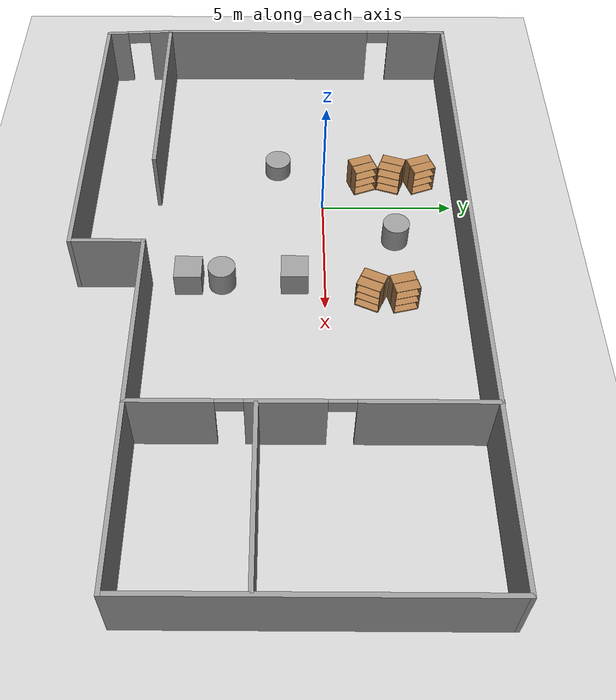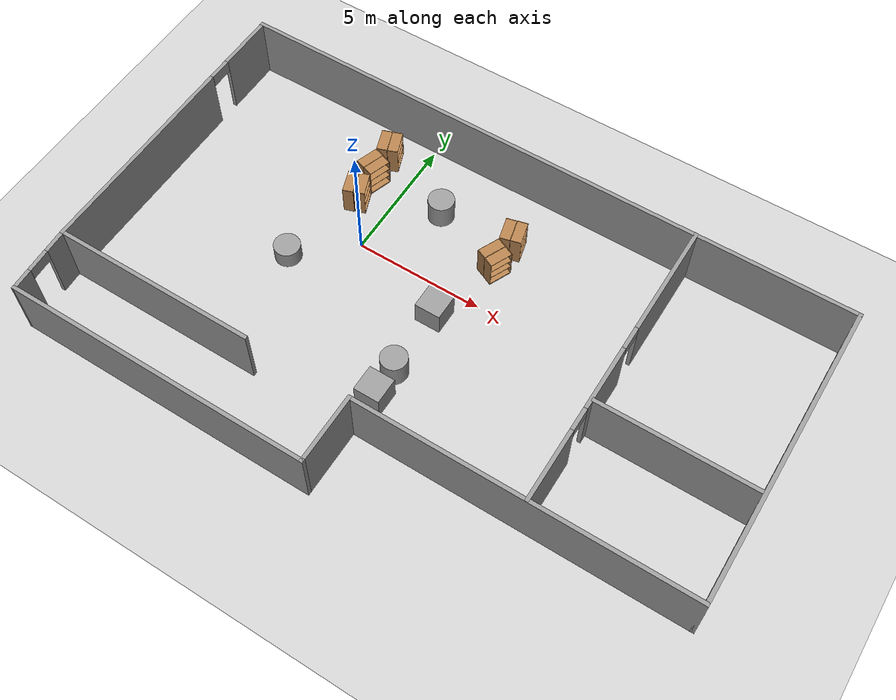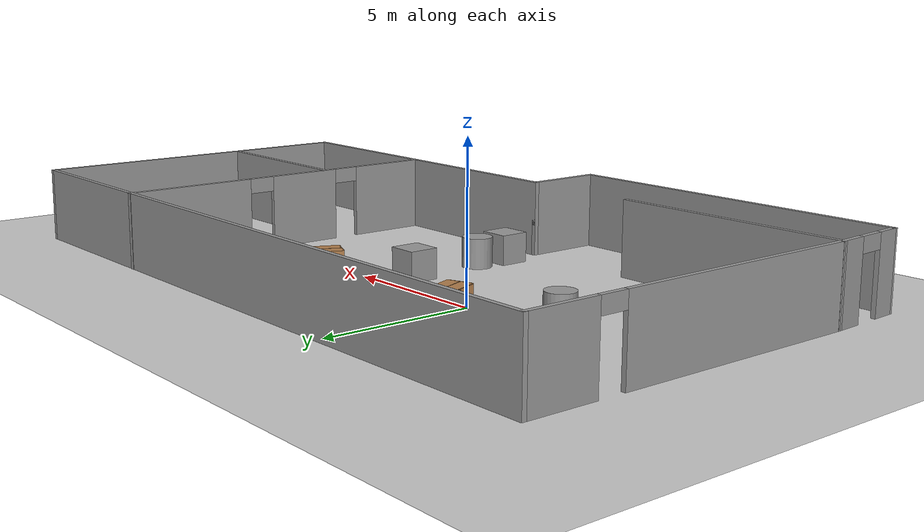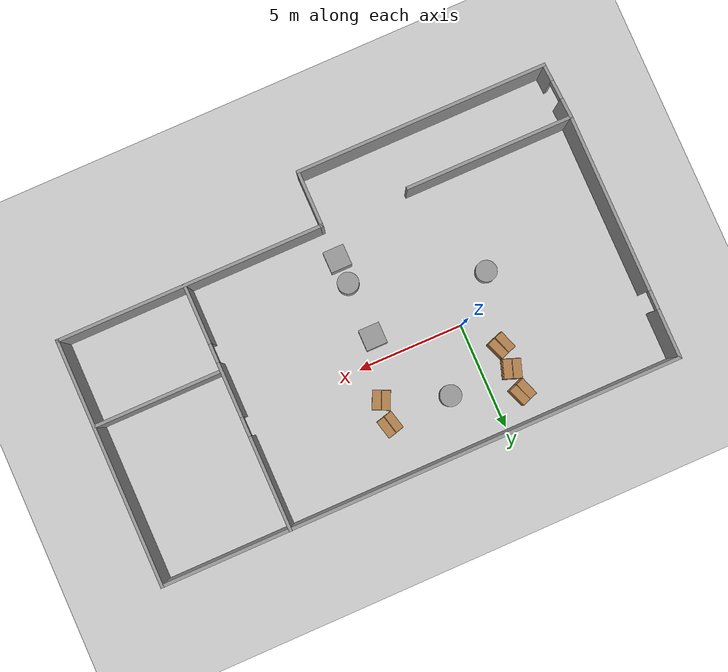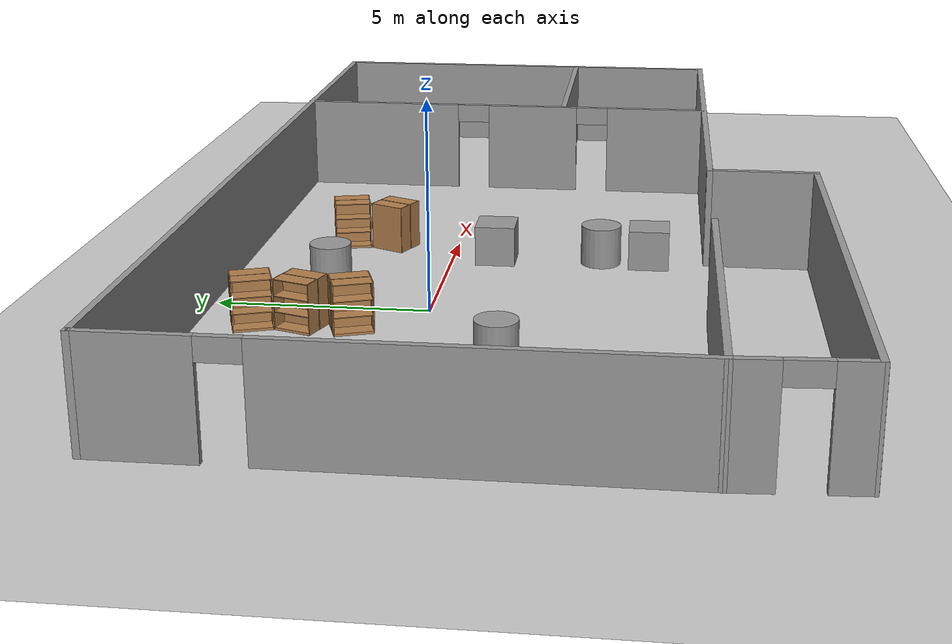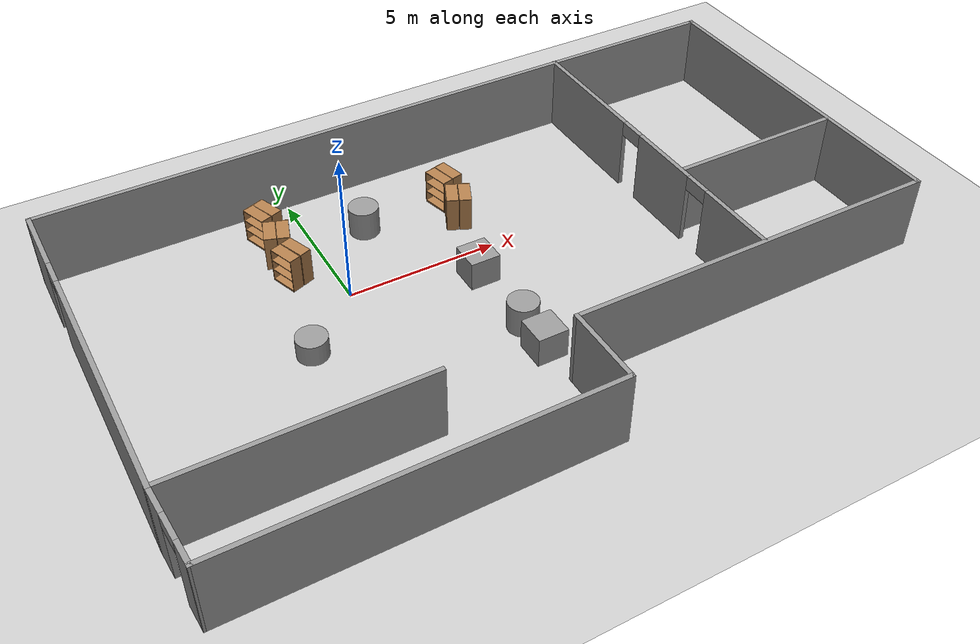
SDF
<sdf version="1.7">
 <world name="default">
  <model name="book_shelf1">
   <model name="bookshelf">
    <static>1</static>
    <link name="link">
     <inertial><mass>1</mass></inertial>
     <collision name="back">
      <pose>0 0.005 0.6 0 -0 0</pose>
      <geometry><box><size>0.9 0.01 1.2</size></box></geometry>
     </collision>
     <visual name="visual1">
      <pose>0 0.005 0.6 0 -0 0</pose>
      <geometry><box><size>0.9 0.01 1.2</size></box></geometry>
      <material>
       <script><uri>file://media/materials/scripts/gazebo.material</uri><name>Gazebo/Wood</name></script>
      </material>
     </visual>
     <collision name="left_side">
      <pose>0.45 -0.195 0.6 0 -0 0</pose>
      <geometry><box><size>0.02 0.4 1.2</size></box></geometry>
     </collision>
     <visual name="visual2">
      <pose>0.45 -0.195 0.6 0 -0 0</pose>
      <geometry><box><size>0.02 0.4 1.2</size></box></geometry>
      <material>
       <script><uri>file://media/materials/scripts/gazebo.material</uri><name>Gazebo/Wood</name></script>
      </material>
     </visual>
     <collision name="right_side">
      <pose>-0.45 -0.195 0.6 0 -0 0</pose>
      <geometry><box><size>0.02 0.4 1.2</size></box></geometry>
     </collision>
     <visual name="visual3">
      <pose>-0.45 -0.195 0.6 0 -0 0</pose>
      <geometry><box><size>0.02 0.4 1.2</size></box></geometry>
      <material>
       <script><uri>file://media/materials/scripts/gazebo.material</uri><name>Gazebo/Wood</name></script>
      </material>
     </visual>
     <collision name="bottom">
      <pose>0 -0.195 0.03 0 -0 0</pose>
      <geometry><box><size>0.88 0.4 0.06</size></box></geometry>
     </collision>
     <visual name="visual4">
      <pose>0 -0.195 0.03 0 -0 0</pose>
      <geometry><box><size>0.88 0.4 0.06</size></box></geometry>
      <material>
       <script><uri>file://media/materials/scripts/gazebo.material</uri><name>Gazebo/Wood</name></script>
      </material>
     </visual>
     <collision name="top">
      <pose>0 -0.195 1.19 0 -0 0</pose>
      <geometry><box><size>0.88 0.4 0.02</size></box></geometry>
     </collision>
     <visual name="visual5">
      <pose>0 -0.195 1.19 0 -0 0</pose>
      <geometry><box><size>0.88 0.4 0.02</size></box></geometry>
      <material>
       <script><uri>file://media/materials/scripts/gazebo.material</uri><name>Gazebo/Wood</name></script>
      </material>
     </visual>
     <collision name="low_shelf">
      <pose>0 -0.195 0.43 0 -0 0</pose>
      <geometry><box><size>0.88 0.4 0.02</size></box></geometry>
     </collision>
     <visual name="visual6">
      <pose>0 -0.195 0.43 0 -0 0</pose>
      <geometry><box><size>0.88 0.4 0.02</size></box></geometry>
      <material>
       <script><uri>file://media/materials/scripts/gazebo.material</uri><name>Gazebo/Wood</name></script>
      </material>
     </visual>
     <collision name="high_shelf">
      <pose>0 -0.195 0.8 0 -0 0</pose>
      <geometry><box><size>0.88 0.4 0.02</size></box></geometry>
     </collision>
     <visual name="visual7">
      <pose>0 -0.195 0.8 0 -0 0</pose>
      <geometry><box><size>0.88 0.4 0.02</size></box></geometry>
      <material>
       <script><uri>file://media/materials/scripts/gazebo.material</uri><name>Gazebo/Wood</name></script>
      </material>
     </visual>
    </link>
    <pose>-0.023837 1.13591 0 0 0 -1.23356</pose>
   </model>
   <model name="bookshelf_clone_0">
    <static>1</static>
    <link name="link">
     <inertial><mass>1</mass></inertial>
     <collision name="back">
      <pose>0 0.005 0.6 0 -0 0</pose>
      <geometry><box><size>0.9 0.01 1.2</size></box></geometry>
     </collision>
     <visual name="visual1">
      <pose>0 0.005 0.6 0 -0 0</pose>
      <geometry><box><size>0.9 0.01 1.2</size></box></geometry>
      <material>
       <script><uri>file://media/materials/scripts/gazebo.material</uri><name>Gazebo/Wood</name></script>
      </material>
     </visual>
     <collision name="left_side">
      <pose>0.45 -0.195 0.6 0 -0 0</pose>
      <geometry><box><size>0.02 0.4 1.2</size></box></geometry>
     </collision>
     <visual name="visual2">
      <pose>0.45 -0.195 0.6 0 -0 0</pose>
      <geometry><box><size>0.02 0.4 1.2</size></box></geometry>
      <material>
       <script><uri>file://media/materials/scripts/gazebo.material</uri><name>Gazebo/Wood</name></script>
      </material>
     </visual>
     <collision name="right_side">
      <pose>-0.45 -0.195 0.6 0 -0 0</pose>
      <geometry><box><size>0.02 0.4 1.2</size></box></geometry>
     </collision>
     <visual name="visual3">
      <pose>-0.45 -0.195 0.6 0 -0 0</pose>
      <geometry><box><size>0.02 0.4 1.2</size></box></geometry>
      <material>
       <script><uri>file://media/materials/scripts/gazebo.material</uri><name>Gazebo/Wood</name></script>
      </material>
     </visual>
     <collision name="bottom">
      <pose>0 -0.195 0.03 0 -0 0</pose>
      <geometry><box><size>0.88 0.4 0.06</size></box></geometry>
     </collision>
     <visual name="visual4">
      <pose>0 -0.195 0.03 0 -0 0</pose>
      <geometry><box><size>0.88 0.4 0.06</size></box></geometry>
      <material>
       <script><uri>file://media/materials/scripts/gazebo.material</uri><name>Gazebo/Wood</name></script>
      </material>
     </visual>
     <collision name="top">
      <pose>0 -0.195 1.19 0 -0 0</pose>
      <geometry><box><size>0.88 0.4 0.02</size></box></geometry>
     </collision>
     <visual name="visual5">
      <pose>0 -0.195 1.19 0 -0 0</pose>
      <geometry><box><size>0.88 0.4 0.02</size></box></geometry>
      <material>
       <script><uri>file://media/materials/scripts/gazebo.material</uri><name>Gazebo/Wood</name></script>
      </material>
     </visual>
     <collision name="low_shelf">
      <pose>0 -0.195 0.43 0 -0 0</pose>
      <geometry><box><size>0.88 0.4 0.02</size></box></geometry>
     </collision>
     <visual name="visual6">
      <pose>0 -0.195 0.43 0 -0 0</pose>
      <geometry><box><size>0.88 0.4 0.02</size></box></geometry>
      <material>
       <script><uri>file://media/materials/scripts/gazebo.material</uri><name>Gazebo/Wood</name></script>
      </material>
     </visual>
     <collision name="high_shelf">
      <pose>0 -0.195 0.8 0 -0 0</pose>
      <geometry><box><size>0.88 0.4 0.02</size></box></geometry>
     </collision>
     <visual name="visual7">
      <pose>0 -0.195 0.8 0 -0 0</pose>
      <geometry><box><size>0.88 0.4 0.02</size></box></geometry>
      <material>
       <script><uri>file://media/materials/scripts/gazebo.material</uri><name>Gazebo/Wood</name></script>
      </material>
     </visual>
    </link>
    <pose>-0.000319 -1.14488 0 0 0 -1.23356</pose>
   </model>
   <model name="bookshelf_clone_1">
    <static>1</static>
    <link name="link">
     <inertial><mass>1</mass></inertial>
     <collision name="back">
      <pose>0 0.005 0.6 0 -0 0</pose>
      <geometry><box><size>0.9 0.01 1.2</size></box></geometry>
     </collision>
     <visual name="visual1">
      <pose>0 0.005 0.6 0 -0 0</pose>
      <geometry><box><size>0.9 0.01 1.2</size></box></geometry>
      <material>
       <script><uri>file://media/materials/scripts/gazebo.material</uri><name>Gazebo/Wood</name></script>
      </material>
     </visual>
     <collision name="left_side">
      <pose>0.45 -0.195 0.6 0 -0 0</pose>
      <geometry><box><size>0.02 0.4 1.2</size></box></geometry>
     </collision>
     <visual name="visual2">
      <pose>0.45 -0.195 0.6 0 -0 0</pose>
      <geometry><box><size>0.02 0.4 1.2</size></box></geometry>
      <material>
       <script><uri>file://media/materials/scripts/gazebo.material</uri><name>Gazebo/Wood</name></script>
      </material>
     </visual>
     <collision name="right_side">
      <pose>-0.45 -0.195 0.6 0 -0 0</pose>
      <geometry><box><size>0.02 0.4 1.2</size></box></geometry>
     </collision>
     <visual name="visual3">
      <pose>-0.45 -0.195 0.6 0 -0 0</pose>
      <geometry><box><size>0.02 0.4 1.2</size></box></geometry>
      <material>
       <script><uri>file://media/materials/scripts/gazebo.material</uri><name>Gazebo/Wood</name></script>
      </material>
     </visual>
     <collision name="bottom">
      <pose>0 -0.195 0.03 0 -0 0</pose>
      <geometry><box><size>0.88 0.4 0.06</size></box></geometry>
     </collision>
     <visual name="visual4">
      <pose>0 -0.195 0.03 0 -0 0</pose>
      <geometry><box><size>0.88 0.4 0.06</size></box></geometry>
      <material>
       <script><uri>file://media/materials/scripts/gazebo.material</uri><name>Gazebo/Wood</name></script>
      </material>
     </visual>
     <collision name="top">
      <pose>0 -0.195 1.19 0 -0 0</pose>
      <geometry><box><size>0.88 0.4 0.02</size></box></geometry>
     </collision>
     <visual name="visual5">
      <pose>0 -0.195 1.19 0 -0 0</pose>
      <geometry><box><size>0.88 0.4 0.02</size></box></geometry>
      <material>
       <script><uri>file://media/materials/scripts/gazebo.material</uri><name>Gazebo/Wood</name></script>
      </material>
     </visual>
     <collision name="low_shelf">
      <pose>0 -0.195 0.43 0 -0 0</pose>
      <geometry><box><size>0.88 0.4 0.02</size></box></geometry>
     </collision>
     <visual name="visual6">
      <pose>0 -0.195 0.43 0 -0 0</pose>
      <geometry><box><size>0.88 0.4 0.02</size></box></geometry>
      <material>
       <script><uri>file://media/materials/scripts/gazebo.material</uri><name>Gazebo/Wood</name></script>
      </material>
     </visual>
     <collision name="high_shelf">
      <pose>0 -0.195 0.8 0 -0 0</pose>
      <geometry><box><size>0.88 0.4 0.02</size></box></geometry>
     </collision>
     <visual name="visual7">
      <pose>0 -0.195 0.8 0 -0 0</pose>
      <geometry><box><size>0.88 0.4 0.02</size></box></geometry>
      <material>
       <script><uri>file://media/materials/scripts/gazebo.material</uri><name>Gazebo/Wood</name></script>
      </material>
     </visual>
    </link>
    <pose>-0.009967 0.010715 0 0 0 -1.8925</pose>
   </model>
   <model name="bookshelf_clone_2">
    <static>1</static>
    <link name="link">
     <inertial><mass>1</mass></inertial>
     <collision name="back">
      <pose>0 0.005 0.6 0 -0 0</pose>
      <geometry><box><size>0.9 0.01 1.2</size></box></geometry>
     </collision>
     <visual name="visual1">
      <pose>0 0.005 0.6 0 -0 0</pose>
      <geometry><box><size>0.9 0.01 1.2</size></box></geometry>
      <material>
       <script><uri>file://media/materials/scripts/gazebo.material</uri><name>Gazebo/Wood</name></script>
      </material>
     </visual>
     <collision name="left_side">
      <pose>0.45 -0.195 0.6 0 -0 0</pose>
      <geometry><box><size>0.02 0.4 1.2</size></box></geometry>
     </collision>
     <visual name="visual2">
      <pose>0.45 -0.195 0.6 0 -0 0</pose>
      <geometry><box><size>0.02 0.4 1.2</size></box></geometry>
      <material>
       <script><uri>file://media/materials/scripts/gazebo.material</uri><name>Gazebo/Wood</name></script>
      </material>
     </visual>
     <collision name="right_side">
      <pose>-0.45 -0.195 0.6 0 -0 0</pose>
      <geometry><box><size>0.02 0.4 1.2</size></box></geometry>
     </collision>
     <visual name="visual3">
      <pose>-0.45 -0.195 0.6 0 -0 0</pose>
      <geometry><box><size>0.02 0.4 1.2</size></box></geometry>
      <material>
       <script><uri>file://media/materials/scripts/gazebo.material</uri><name>Gazebo/Wood</name></script>
      </material>
     </visual>
     <collision name="bottom">
      <pose>0 -0.195 0.03 0 -0 0</pose>
      <geometry><box><size>0.88 0.4 0.06</size></box></geometry>
     </collision>
     <visual name="visual4">
      <pose>0 -0.195 0.03 0 -0 0</pose>
      <geometry><box><size>0.88 0.4 0.06</size></box></geometry>
      <material>
       <script><uri>file://media/materials/scripts/gazebo.material</uri><name>Gazebo/Wood</name></script>
      </material>
     </visual>
     <collision name="top">
      <pose>0 -0.195 1.19 0 -0 0</pose>
      <geometry><box><size>0.88 0.4 0.02</size></box></geometry>
     </collision>
     <visual name="visual5">
      <pose>0 -0.195 1.19 0 -0 0</pose>
      <geometry><box><size>0.88 0.4 0.02</size></box></geometry>
      <material>
       <script><uri>file://media/materials/scripts/gazebo.material</uri><name>Gazebo/Wood</name></script>
      </material>
     </visual>
     <collision name="low_shelf">
      <pose>0 -0.195 0.43 0 -0 0</pose>
      <geometry><box><size>0.88 0.4 0.02</size></box></geometry>
     </collision>
     <visual name="visual6">
      <pose>0 -0.195 0.43 0 -0 0</pose>
      <geometry><box><size>0.88 0.4 0.02</size></box></geometry>
      <material>
       <script><uri>file://media/materials/scripts/gazebo.material</uri><name>Gazebo/Wood</name></script>
      </material>
     </visual>
     <collision name="high_shelf">
      <pose>0 -0.195 0.8 0 -0 0</pose>
      <geometry><box><size>0.88 0.4 0.02</size></box></geometry>
     </collision>
     <visual name="visual7">
      <pose>0 -0.195 0.8 0 -0 0</pose>
      <geometry><box><size>0.88 0.4 0.02</size></box></geometry>
      <material>
       <script><uri>file://media/materials/scripts/gazebo.material</uri><name>Gazebo/Wood</name></script>
      </material>
     </visual>
    </link>
    <pose>-0.005453 1.14086 0 0 -0 1.93052</pose>
   </model>
   <model name="bookshelf_clone_2_clone">
    <static>1</static>
    <link name="link">
     <inertial><mass>1</mass></inertial>
     <collision name="back">
      <pose>0 0.005 0.6 0 -0 0</pose>
      <geometry><box><size>0.9 0.01 1.2</size></box></geometry>
     </collision>
     <visual name="visual1">
      <pose>0 0.005 0.6 0 -0 0</pose>
      <geometry><box><size>0.9 0.01 1.2</size></box></geometry>
      <material>
       <script><uri>file://media/materials/scripts/gazebo.material</uri><name>Gazebo/Wood</name></script>
      </material>
     </visual>
     <collision name="left_side">
      <pose>0.45 -0.195 0.6 0 -0 0</pose>
      <geometry><box><size>0.02 0.4 1.2</size></box></geometry>
     </collision>
     <visual name="visual2">
      <pose>0.45 -0.195 0.6 0 -0 0</pose>
      <geometry><box><size>0.02 0.4 1.2</size></box></geometry>
      <material>
       <script><uri>file://media/materials/scripts/gazebo.material</uri><name>Gazebo/Wood</name></script>
      </material>
     </visual>
     <collision name="right_side">
      <pose>-0.45 -0.195 0.6 0 -0 0</pose>
      <geometry><box><size>0.02 0.4 1.2</size></box></geometry>
     </collision>
     <visual name="visual3">
      <pose>-0.45 -0.195 0.6 0 -0 0</pose>
      <geometry><box><size>0.02 0.4 1.2</size></box></geometry>
      <material>
       <script><uri>file://media/materials/scripts/gazebo.material</uri><name>Gazebo/Wood</name></script>
      </material>
     </visual>
     <collision name="bottom">
      <pose>0 -0.195 0.03 0 -0 0</pose>
      <geometry><box><size>0.88 0.4 0.06</size></box></geometry>
     </collision>
     <visual name="visual4">
      <pose>0 -0.195 0.03 0 -0 0</pose>
      <geometry><box><size>0.88 0.4 0.06</size></box></geometry>
      <material>
       <script><uri>file://media/materials/scripts/gazebo.material</uri><name>Gazebo/Wood</name></script>
      </material>
     </visual>
     <collision name="top">
      <pose>0 -0.195 1.19 0 -0 0</pose>
      <geometry><box><size>0.88 0.4 0.02</size></box></geometry>
     </collision>
     <visual name="visual5">
      <pose>0 -0.195 1.19 0 -0 0</pose>
      <geometry><box><size>0.88 0.4 0.02</size></box></geometry>
      <material>
       <script><uri>file://media/materials/scripts/gazebo.material</uri><name>Gazebo/Wood</name></script>
      </material>
     </visual>
     <collision name="low_shelf">
      <pose>0 -0.195 0.43 0 -0 0</pose>
      <geometry><box><size>0.88 0.4 0.02</size></box></geometry>
     </collision>
     <visual name="visual6">
      <pose>0 -0.195 0.43 0 -0 0</pose>
      <geometry><box><size>0.88 0.4 0.02</size></box></geometry>
      <material>
       <script><uri>file://media/materials/scripts/gazebo.material</uri><name>Gazebo/Wood</name></script>
      </material>
     </visual>
     <collision name="high_shelf">
      <pose>0 -0.195 0.8 0 -0 0</pose>
      <geometry><box><size>0.88 0.4 0.02</size></box></geometry>
     </collision>
     <visual name="visual7">
      <pose>0 -0.195 0.8 0 -0 0</pose>
      <geometry><box><size>0.88 0.4 0.02</size></box></geometry>
      <material>
       <script><uri>file://media/materials/scripts/gazebo.material</uri><name>Gazebo/Wood</name></script>
      </material>
     </visual>
    </link>
    <pose>0.028587 -1.13368 0 0 -0 1.93052</pose>
   </model>
   <model name="bookshelf_clone_2_clone_clone">
    <static>1</static>
    <link name="link">
     <inertial><mass>1</mass></inertial>
     <collision name="back">
      <pose>0 0.005 0.6 0 -0 0</pose>
      <geometry><box><size>0.9 0.01 1.2</size></box></geometry>
     </collision>
     <visual name="visual1">
      <pose>0 0.005 0.6 0 -0 0</pose>
      <geometry><box><size>0.9 0.01 1.2</size></box></geometry>
      <material>
       <script><uri>file://media/materials/scripts/gazebo.material</uri><name>Gazebo/Wood</name></script>
      </material>
     </visual>
     <collision name="left_side">
      <pose>0.45 -0.195 0.6 0 -0 0</pose>
      <geometry><box><size>0.02 0.4 1.2</size></box></geometry>
     </collision>
     <visual name="visual2">
      <pose>0.45 -0.195 0.6 0 -0 0</pose>
      <geometry><box><size>0.02 0.4 1.2</size></box></geometry>
      <material>
       <script><uri>file://media/materials/scripts/gazebo.material</uri><name>Gazebo/Wood</name></script>
      </material>
     </visual>
     <collision name="right_side">
      <pose>-0.45 -0.195 0.6 0 -0 0</pose>
      <geometry><box><size>0.02 0.4 1.2</size></box></geometry>
     </collision>
     <visual name="visual3">
      <pose>-0.45 -0.195 0.6 0 -0 0</pose>
      <geometry><box><size>0.02 0.4 1.2</size></box></geometry>
      <material>
       <script><uri>file://media/materials/scripts/gazebo.material</uri><name>Gazebo/Wood</name></script>
      </material>
     </visual>
     <collision name="bottom">
      <pose>0 -0.195 0.03 0 -0 0</pose>
      <geometry><box><size>0.88 0.4 0.06</size></box></geometry>
     </collision>
     <visual name="visual4">
      <pose>0 -0.195 0.03 0 -0 0</pose>
      <geometry><box><size>0.88 0.4 0.06</size></box></geometry>
      <material>
       <script><uri>file://media/materials/scripts/gazebo.material</uri><name>Gazebo/Wood</name></script>
      </material>
     </visual>
     <collision name="top">
      <pose>0 -0.195 1.19 0 -0 0</pose>
      <geometry><box><size>0.88 0.4 0.02</size></box></geometry>
     </collision>
     <visual name="visual5">
      <pose>0 -0.195 1.19 0 -0 0</pose>
      <geometry><box><size>0.88 0.4 0.02</size></box></geometry>
      <material>
       <script><uri>file://media/materials/scripts/gazebo.material</uri><name>Gazebo/Wood</name></script>
      </material>
     </visual>
     <collision name="low_shelf">
      <pose>0 -0.195 0.43 0 -0 0</pose>
      <geometry><box><size>0.88 0.4 0.02</size></box></geometry>
     </collision>
     <visual name="visual6">
      <pose>0 -0.195 0.43 0 -0 0</pose>
      <geometry><box><size>0.88 0.4 0.02</size></box></geometry>
      <material>
       <script><uri>file://media/materials/scripts/gazebo.material</uri><name>Gazebo/Wood</name></script>
      </material>
     </visual>
     <collision name="high_shelf">
      <pose>0 -0.195 0.8 0 -0 0</pose>
      <geometry><box><size>0.88 0.4 0.02</size></box></geometry>
     </collision>
     <visual name="visual7">
      <pose>0 -0.195 0.8 0 -0 0</pose>
      <geometry><box><size>0.88 0.4 0.02</size></box></geometry>
      <material>
       <script><uri>file://media/materials/scripts/gazebo.material</uri><name>Gazebo/Wood</name></script>
      </material>
     </visual>
    </link>
    <pose>0.010989 -0.008901 0 0 -0 1.25018</pose>
   </model>
   <static>0</static>
   <pose>-1.2488 2.70889 0 0 -0 0</pose>
  </model>
  <model name="unit_cylinder">
   <pose>1.744 2.70721 0.5 0 -0 0</pose>
   <link name="link">
    <inertial>
     <mass>1</mass>
     <inertia><ixx>0.145833</ixx><ixy>0</ixy><ixz>0</ixz><iyy>0.145833</iyy><iyz>0</iyz><izz>0.125</izz></inertia>
    </inertial>
    <collision name="collision">
     <geometry><cylinder><radius>0.500003</radius><length>1</length></cylinder></geometry>
    </collision>
    <visual name="visual">
     <geometry><cylinder><radius>0.500003</radius><length>1</length></cylinder></geometry>
     <material>
      <script><name>Gazebo/Grey</name><uri>file://media/materials/scripts/gazebo.material</uri></script>
     </material>
    </visual>
   </link>
  </model>
  <model name="bookshelf_0_clone">
   <static>1</static>
   <link name="link">
    <inertial><mass>1</mass></inertial>
    <collision name="back">
     <pose>0 0.005 0.6 0 -0 0</pose>
     <geometry><box><size>0.9 0.01 1.2</size></box></geometry>
    </collision>
    <visual name="visual1">
     <pose>0 0.005 0.6 0 -0 0</pose>
     <geometry><box><size>0.9 0.01 1.2</size></box></geometry>
     <material>
      <script><uri>file://media/materials/scripts/gazebo.material</uri><name>Gazebo/Wood</name></script>
     </material>
    </visual>
    <collision name="left_side">
     <pose>0.45 -0.195 0.6 0 -0 0</pose>
     <geometry><box><size>0.02 0.4 1.2</size></box></geometry>
    </collision>
    <visual name="visual2">
     <pose>0.45 -0.195 0.6 0 -0 0</pose>
     <geometry><box><size>0.02 0.4 1.2</size></box></geometry>
     <material>
      <script><uri>file://media/materials/scripts/gazebo.material</uri><name>Gazebo/Wood</name></script>
     </material>
    </visual>
    <collision name="right_side">
     <pose>-0.45 -0.195 0.6 0 -0 0</pose>
     <geometry><box><size>0.02 0.4 1.2</size></box></geometry>
    </collision>
    <visual name="visual3">
     <pose>-0.45 -0.195 0.6 0 -0 0</pose>
     <geometry><box><size>0.02 0.4 1.2</size></box></geometry>
     <material>
      <script><uri>file://media/materials/scripts/gazebo.material</uri><name>Gazebo/Wood</name></script>
     </material>
    </visual>
    <collision name="bottom">
     <pose>0 -0.195 0.03 0 -0 0</pose>
     <geometry><box><size>0.88 0.4 0.06</size></box></geometry>
    </collision>
    <visual name="visual4">
     <pose>0 -0.195 0.03 0 -0 0</pose>
     <geometry><box><size>0.88 0.4 0.06</size></box></geometry>
     <material>
      <script><uri>file://media/materials/scripts/gazebo.material</uri><name>Gazebo/Wood</name></script>
     </material>
    </visual>
    <collision name="top">
     <pose>0 -0.195 1.19 0 -0 0</pose>
     <geometry><box><size>0.88 0.4 0.02</size></box></geometry>
    </collision>
    <visual name="visual5">
     <pose>0 -0.195 1.19 0 -0 0</pose>
     <geometry><box><size>0.88 0.4 0.02</size></box></geometry>
     <material>
      <script><uri>file://media/materials/scripts/gazebo.material</uri><name>Gazebo/Wood</name></script>
     </material>
    </visual>
    <collision name="low_shelf">
     <pose>0 -0.195 0.43 0 -0 0</pose>
     <geometry><box><size>0.88 0.4 0.02</size></box></geometry>
    </collision>
    <visual name="visual6">
     <pose>0 -0.195 0.43 0 -0 0</pose>
     <geometry><box><size>0.88 0.4 0.02</size></box></geometry>
     <material>
      <script><uri>file://media/materials/scripts/gazebo.material</uri><name>Gazebo/Wood</name></script>
     </material>
    </visual>
    <collision name="high_shelf">
     <pose>0 -0.195 0.8 0 -0 0</pose>
     <geometry><box><size>0.88 0.4 0.02</size></box></geometry>
    </collision>
    <visual name="visual7">
     <pose>0 -0.195 0.8 0 -0 0</pose>
     <geometry><box><size>0.88 0.4 0.02</size></box></geometry>
     <material>
      <script><uri>file://media/materials/scripts/gazebo.material</uri><name>Gazebo/Wood</name></script>
     </material>
    </visual>
   </link>
   <pose>4.67902 1.63453 0 0 -0 1.14569</pose>
  </model>
  <model name="bookshelf_0_clone_1">
   <static>1</static>
   <link name="link">
    <inertial><mass>1</mass></inertial>
    <collision name="back">
     <pose>0 0.005 0.6 0 -0 0</pose>
     <geometry><box><size>0.9 0.01 1.2</size></box></geometry>
    </collision>
    <visual name="visual1">
     <pose>0 0.005 0.6 0 -0 0</pose>
     <geometry><box><size>0.9 0.01 1.2</size></box></geometry>
     <material>
      <script><uri>file://media/materials/scripts/gazebo.material</uri><name>Gazebo/Wood</name></script>
     </material>
    </visual>
    <collision name="left_side">
     <pose>0.45 -0.195 0.6 0 -0 0</pose>
     <geometry><box><size>0.02 0.4 1.2</size></box></geometry>
    </collision>
    <visual name="visual2">
     <pose>0.45 -0.195 0.6 0 -0 0</pose>
     <geometry><box><size>0.02 0.4 1.2</size></box></geometry>
     <material>
      <script><uri>file://media/materials/scripts/gazebo.material</uri><name>Gazebo/Wood</name></script>
     </material>
    </visual>
    <collision name="right_side">
     <pose>-0.45 -0.195 0.6 0 -0 0</pose>
     <geometry><box><size>0.02 0.4 1.2</size></box></geometry>
    </collision>
    <visual name="visual3">
     <pose>-0.45 -0.195 0.6 0 -0 0</pose>
     <geometry><box><size>0.02 0.4 1.2</size></box></geometry>
     <material>
      <script><uri>file://media/materials/scripts/gazebo.material</uri><name>Gazebo/Wood</name></script>
     </material>
    </visual>
    <collision name="bottom">
     <pose>0 -0.195 0.03 0 -0 0</pose>
     <geometry><box><size>0.88 0.4 0.06</size></box></geometry>
    </collision>
    <visual name="visual4">
     <pose>0 -0.195 0.03 0 -0 0</pose>
     <geometry><box><size>0.88 0.4 0.06</size></box></geometry>
     <material>
      <script><uri>file://media/materials/scripts/gazebo.material</uri><name>Gazebo/Wood</name></script>
     </material>
    </visual>
    <collision name="top">
     <pose>0 -0.195 1.19 0 -0 0</pose>
     <geometry><box><size>0.88 0.4 0.02</size></box></geometry>
    </collision>
    <visual name="visual5">
     <pose>0 -0.195 1.19 0 -0 0</pose>
     <geometry><box><size>0.88 0.4 0.02</size></box></geometry>
     <material>
      <script><uri>file://media/materials/scripts/gazebo.material</uri><name>Gazebo/Wood</name></script>
     </material>
    </visual>
    <collision name="low_shelf">
     <pose>0 -0.195 0.43 0 -0 0</pose>
     <geometry><box><size>0.88 0.4 0.02</size></box></geometry>
    </collision>
    <visual name="visual6">
     <pose>0 -0.195 0.43 0 -0 0</pose>
     <geometry><box><size>0.88 0.4 0.02</size></box></geometry>
     <material>
      <script><uri>file://media/materials/scripts/gazebo.material</uri><name>Gazebo/Wood</name></script>
     </material>
    </visual>
    <collision name="high_shelf">
     <pose>0 -0.195 0.8 0 -0 0</pose>
     <geometry><box><size>0.88 0.4 0.02</size></box></geometry>
    </collision>
    <visual name="visual7">
     <pose>0 -0.195 0.8 0 -0 0</pose>
     <geometry><box><size>0.88 0.4 0.02</size></box></geometry>
     <material>
      <script><uri>file://media/materials/scripts/gazebo.material</uri><name>Gazebo/Wood</name></script>
     </material>
    </visual>
   </link>
   <pose>4.29682 1.80922 0 0 -0 1.14569</pose>
  </model>
  <model name="bookshelf_1">
   <static>1</static>
   <link name="link">
    <inertial><mass>1</mass></inertial>
    <collision name="back">
     <pose>0 0.005 0.6 0 -0 0</pose>
     <geometry><box><size>0.9 0.01 1.2</size></box></geometry>
    </collision>
    <visual name="visual1">
     <pose>0 0.005 0.6 0 -0 0</pose>
     <geometry><box><size>0.9 0.01 1.2</size></box></geometry>
     <material>
      <script><uri>file://media/materials/scripts/gazebo.material</uri><name>Gazebo/Wood</name></script>
     </material>
    </visual>
    <collision name="left_side">
     <pose>0.45 -0.195 0.6 0 -0 0</pose>
     <geometry><box><size>0.02 0.4 1.2</size></box></geometry>
    </collision>
    <visual name="visual2">
     <pose>0.45 -0.195 0.6 0 -0 0</pose>
     <geometry><box><size>0.02 0.4 1.2</size></box></geometry>
     <material>
      <script><uri>file://media/materials/scripts/gazebo.material</uri><name>Gazebo/Wood</name></script>
     </material>
    </visual>
    <collision name="right_side">
     <pose>-0.45 -0.195 0.6 0 -0 0</pose>
     <geometry><box><size>0.02 0.4 1.2</size></box></geometry>
    </collision>
    <visual name="visual3">
     <pose>-0.45 -0.195 0.6 0 -0 0</pose>
     <geometry><box><size>0.02 0.4 1.2</size></box></geometry>
     <material>
      <script><uri>file://media/materials/scripts/gazebo.material</uri><name>Gazebo/Wood</name></script>
     </material>
    </visual>
    <collision name="bottom">
     <pose>0 -0.195 0.03 0 -0 0</pose>
     <geometry><box><size>0.88 0.4 0.06</size></box></geometry>
    </collision>
    <visual name="visual4">
     <pose>0 -0.195 0.03 0 -0 0</pose>
     <geometry><box><size>0.88 0.4 0.06</size></box></geometry>
     <material>
      <script><uri>file://media/materials/scripts/gazebo.material</uri><name>Gazebo/Wood</name></script>
     </material>
    </visual>
    <collision name="top">
     <pose>0 -0.195 1.19 0 -0 0</pose>
     <geometry><box><size>0.88 0.4 0.02</size></box></geometry>
    </collision>
    <visual name="visual5">
     <pose>0 -0.195 1.19 0 -0 0</pose>
     <geometry><box><size>0.88 0.4 0.02</size></box></geometry>
     <material>
      <script><uri>file://media/materials/scripts/gazebo.material</uri><name>Gazebo/Wood</name></script>
     </material>
    </visual>
    <collision name="low_shelf">
     <pose>0 -0.195 0.43 0 -0 0</pose>
     <geometry><box><size>0.88 0.4 0.02</size></box></geometry>
    </collision>
    <visual name="visual6">
     <pose>0 -0.195 0.43 0 -0 0</pose>
     <geometry><box><size>0.88 0.4 0.02</size></box></geometry>
     <material>
      <script><uri>file://media/materials/scripts/gazebo.material</uri><name>Gazebo/Wood</name></script>
     </material>
    </visual>
    <collision name="high_shelf">
     <pose>0 -0.195 0.8 0 -0 0</pose>
     <geometry><box><size>0.88 0.4 0.02</size></box></geometry>
    </collision>
    <visual name="visual7">
     <pose>0 -0.195 0.8 0 -0 0</pose>
     <geometry><box><size>0.88 0.4 0.02</size></box></geometry>
     <material>
      <script><uri>file://media/materials/scripts/gazebo.material</uri><name>Gazebo/Wood</name></script>
     </material>
    </visual>
   </link>
   <pose>4.73691 2.79538 0 0 0 -1.32474</pose>
  </model>
  <model name="bookshelf_0_clone_2">
   <static>1</static>
   <link name="link">
    <inertial><mass>1</mass></inertial>
    <collision name="back">
     <pose>0 0.005 0.6 0 -0 0</pose>
     <geometry><box><size>0.9 0.01 1.2</size></box></geometry>
    </collision>
    <visual name="visual1">
     <pose>0 0.005 0.6 0 -0 0</pose>
     <geometry><box><size>0.9 0.01 1.2</size></box></geometry>
     <material>
      <script><uri>file://media/materials/scripts/gazebo.material</uri><name>Gazebo/Wood</name></script>
     </material>
    </visual>
    <collision name="left_side">
     <pose>0.45 -0.195 0.6 0 -0 0</pose>
     <geometry><box><size>0.02 0.4 1.2</size></box></geometry>
    </collision>
    <visual name="visual2">
     <pose>0.45 -0.195 0.6 0 -0 0</pose>
     <geometry><box><size>0.02 0.4 1.2</size></box></geometry>
     <material>
      <script><uri>file://media/materials/scripts/gazebo.material</uri><name>Gazebo/Wood</name></script>
     </material>
    </visual>
    <collision name="right_side">
     <pose>-0.45 -0.195 0.6 0 -0 0</pose>
     <geometry><box><size>0.02 0.4 1.2</size></box></geometry>
    </collision>
    <visual name="visual3">
     <pose>-0.45 -0.195 0.6 0 -0 0</pose>
     <geometry><box><size>0.02 0.4 1.2</size></box></geometry>
     <material>
      <script><uri>file://media/materials/scripts/gazebo.material</uri><name>Gazebo/Wood</name></script>
     </material>
    </visual>
    <collision name="bottom">
     <pose>0 -0.195 0.03 0 -0 0</pose>
     <geometry><box><size>0.88 0.4 0.06</size></box></geometry>
    </collision>
    <visual name="visual4">
     <pose>0 -0.195 0.03 0 -0 0</pose>
     <geometry><box><size>0.88 0.4 0.06</size></box></geometry>
     <material>
      <script><uri>file://media/materials/scripts/gazebo.material</uri><name>Gazebo/Wood</name></script>
     </material>
    </visual>
    <collision name="top">
     <pose>0 -0.195 1.19 0 -0 0</pose>
     <geometry><box><size>0.88 0.4 0.02</size></box></geometry>
    </collision>
    <visual name="visual5">
     <pose>0 -0.195 1.19 0 -0 0</pose>
     <geometry><box><size>0.88 0.4 0.02</size></box></geometry>
     <material>
      <script><uri>file://media/materials/scripts/gazebo.material</uri><name>Gazebo/Wood</name></script>
     </material>
    </visual>
    <collision name="low_shelf">
     <pose>0 -0.195 0.43 0 -0 0</pose>
     <geometry><box><size>0.88 0.4 0.02</size></box></geometry>
    </collision>
    <visual name="visual6">
     <pose>0 -0.195 0.43 0 -0 0</pose>
     <geometry><box><size>0.88 0.4 0.02</size></box></geometry>
     <material>
      <script><uri>file://media/materials/scripts/gazebo.material</uri><name>Gazebo/Wood</name></script>
     </material>
    </visual>
    <collision name="high_shelf">
     <pose>0 -0.195 0.8 0 -0 0</pose>
     <geometry><box><size>0.88 0.4 0.02</size></box></geometry>
    </collision>
    <visual name="visual7">
     <pose>0 -0.195 0.8 0 -0 0</pose>
     <geometry><box><size>0.88 0.4 0.02</size></box></geometry>
     <material>
      <script><uri>file://media/materials/scripts/gazebo.material</uri><name>Gazebo/Wood</name></script>
     </material>
    </visual>
   </link>
   <pose>4.76002 2.8079 0 0 -0 1.81133</pose>
  </model>
  <model name="unit_box">
   <pose>3.87006 -1.11212 0.5 0 -0 0</pose>
   <link name="link">
    <inertial>
     <mass>1</mass>
     <inertia>
      <ixx>0.166667</ixx>
      <ixy>0</ixy>
      <ixz>0</ixz>
      <iyy>0.166667</iyy>
      <iyz>0</iyz>
      <izz>0.166667</izz>
     </inertia>
    </inertial>
    <collision name="collision"><geometry><box><size>1 1 1</size></box></geometry></collision>
    <visual name="visual">
     <geometry><box><size>1 1 1</size></box></geometry>
     <material>
      <script><name>Gazebo/Grey</name><uri>file://media/materials/scripts/gazebo.material</uri></script>
     </material>
    </visual>
   </link>
  </model>
  <model name="unit_cylinder_0">
   <pose>-2.01966 -1.77196 0.175618 6e-06 -6e-06 0</pose>
   <link name="link">
    <inertial>
     <mass>1</mass>
     <inertia><ixx>0.145833</ixx><ixy>0</ixy><ixz>0</ixz><iyy>0.145833</iyy><iyz>0</iyz><izz>0.125</izz></inertia>
    </inertial>
    <collision name="collision">
     <geometry><cylinder><radius>0.5</radius><length>1</length></cylinder></geometry>
    </collision>
    <visual name="visual">
     <geometry><cylinder><radius>0.5</radius><length>1</length></cylinder></geometry>
     <material>
      <script><name>Gazebo/Grey</name><uri>file://media/materials/scripts/gazebo.material</uri></script>
     </material>
    </visual>
   </link>
  </model>
  <model name="unit_cylinder_1">
   <pose>3.91473 -3.75762 0.499998 3e-06 4e-06 -0</pose>
   <link name="link">
    <inertial>
     <mass>1</mass>
     <inertia><ixx>0.145833</ixx><ixy>0</ixy><ixz>0</ixz><iyy>0.145833</iyy><iyz>0</iyz><izz>0.125</izz></inertia>
    </inertial>
    <collision name="collision">
     <geometry><cylinder><radius>0.5</radius><length>1</length></cylinder></geometry>
    </collision>
    <visual name="visual">
     <geometry><cylinder><radius>0.5</radius><length>1</length></cylinder></geometry>
     <material>
      <script><name>Gazebo/Grey</name><uri>file://media/materials/scripts/gazebo.material</uri></script>
     </material>
    </visual>
   </link>
  </model>
  <model name="ground_plane">
   <static>1</static>
   <link name="link">
    <collision name="collision">
     <geometry><plane><normal>0 0 1</normal><size>100 100</size></plane></geometry>
     <surface>
      <contact><collide_bitmask>65535</collide_bitmask></contact>
      <friction><ode><mu>100</mu><mu2>50</mu2></ode></friction>
     </surface>
    </collision>
    <visual name="visual">
     <cast_shadows>0</cast_shadows>
     <geometry><plane><normal>0 0 1</normal><size>100 100</size></plane></geometry>
     <material>
      <script><uri>file://media/materials/scripts/gazebo.material</uri><name>Gazebo/Grey</name></script>
     </material>
    </visual>
   </link>
  </model>
  <model name="unit_box_1">
   <pose>3.91859 -4.96268 0.5 0 -0 0</pose>
   <link name="link">
    <inertial>
     <mass>1</mass>
     <inertia>
      <ixx>0.166667</ixx>
      <ixy>0</ixy>
      <ixz>0</ixz>
      <iyy>0.166667</iyy>
      <iyz>0</iyz>
      <izz>0.166667</izz>
     </inertia>
    </inertial>
    <collision name="collision"><geometry><box><size>1 1 1</size></box></geometry></collision>
    <visual name="visual">
     <geometry><box><size>1 1 1</size></box></geometry>
     <material>
      <script><name>Gazebo/Grey</name><uri>file://media/materials/scripts/gazebo.material</uri></script>
     </material>
    </visual>
   </link>
  </model>
  <model name="wall">
   <pose>4.29603 -1.8996 0 0 -0 0</pose>
   <link name="Wall_10">
    <collision name="Wall_10_Collision">
     <geometry><box><size>24.75 0.15 2.5</size></box></geometry>
     <pose>0 0 1.25 0 -0 0</pose>
    </collision>
    <visual name="Wall_10_Visual">
     <pose>0 0 1.25 0 -0 0</pose>
     <geometry><box><size>24.75 0.15 2.5</size></box></geometry>
     <material>
      <script><uri>file://media/materials/scripts/gazebo.material</uri><name>Gazebo/Grey</name></script>
      <ambient>1 1 1 1</ambient>
     </material>
     <meta><layer>0</layer></meta>
    </visual>
    <pose>0.002097 7.09451 0 0 -0 3.14159</pose>
   </link>
   <link name="Wall_11">
    <pose>-12.2979 1.29451 0 0 -0 -1.5708</pose>
    <visual name="Wall_11_Visual_0">
     <pose>-4.68748 0 1.25 0 -0 0</pose>
     <geometry><box><size>2.37505 0.15 2.5</size></box></geometry>
     <material>
      <script><uri>file://media/materials/scripts/gazebo.material</uri><name>Gazebo/Grey</name></script>
      <ambient>1 1 1 1</ambient>
     </material>
     <meta><layer>0</layer></meta>
    </visual>
    <collision name="Wall_11_Collision_0">
     <geometry><box><size>2.37505 0.15 2.5</size></box></geometry>
     <pose>-4.68748 0 1.25 0 -0 0</pose>
    </collision>
    <visual name="Wall_11_Visual_1">
     <pose>1.63752 0 1.25 0 -0 0</pose>
     <geometry><box><size>8.47495 0.15 2.5</size></box></geometry>
     <material>
      <script><uri>file://media/materials/scripts/gazebo.material</uri><name>Gazebo/Grey</name></script>
      <ambient>1 1 1 1</ambient>
     </material>
     <meta><layer>0</layer></meta>
    </visual>
    <collision name="Wall_11_Collision_1">
     <geometry><box><size>8.47495 0.15 2.5</size></box></geometry>
     <pose>1.63752 0 1.25 0 -0 0</pose>
    </collision>
    <visual name="Wall_11_Visual_2">
     <pose>-3.04995 0 2.25 0 -0 0</pose>
     <geometry><box><size>0.9 0.15 0.5</size></box></geometry>
     <material>
      <script><uri>file://media/materials/scripts/gazebo.material</uri><name>Gazebo/Grey</name></script>
      <ambient>1 1 1 1</ambient>
     </material>
     <meta><layer>0</layer></meta>
    </visual>
    <collision name="Wall_11_Collision_2">
     <geometry><box><size>0.9 0.15 0.5</size></box></geometry>
     <pose>-3.04995 0 2.25 0 -0 0</pose>
    </collision>
   </link>
   <link name="Wall_12">
    <collision name="Wall_12_Collision">
     <geometry><box><size>8 0.15 2.5</size></box></geometry>
     <pose>0 0 1.25 0 -0 0</pose>
    </collision>
    <visual name="Wall_12_Visual">
     <pose>0 0 1.25 0 -0 0</pose>
     <geometry><box><size>8 0.15 2.5</size></box></geometry>
     <material>
      <script><uri>file://media/materials/scripts/gazebo.material</uri><name>Gazebo/Grey</name></script>
      <ambient>1 1 1 1</ambient>
     </material>
     <meta><layer>0</layer></meta>
    </visual>
    <pose>-8.3729 -4.50549 0 0 -0 0</pose>
   </link>
   <link name="Wall_14">
    <collision name="Wall_14_Collision">
     <geometry><box><size>2.75 0.15 2.5</size></box></geometry>
     <pose>0 0 1.25 0 -0 0</pose>
    </collision>
    <visual name="Wall_14_Visual">
     <pose>0 0 1.25 0 -0 0</pose>
     <geometry><box><size>2.75 0.15 2.5</size></box></geometry>
     <material>
      <script><uri>file://media/materials/scripts/gazebo.material</uri><name>Gazebo/Grey</name></script>
      <ambient>1 1 1 1</ambient>
     </material>
     <meta><layer>0</layer></meta>
    </visual>
    <pose>-0.297903 -5.80549 0 0 -0 -1.5708</pose>
   </link>
   <link name="Wall_15">
    <collision name="Wall_15_Collision">
     <geometry><box><size>12 0.15 2.5</size></box></geometry>
     <pose>0 0 1.25 0 -0 0</pose>
    </collision>
    <visual name="Wall_15_Visual">
     <pose>0 0 1.25 0 -0 0</pose>
     <geometry><box><size>12 0.15 2.5</size></box></geometry>
     <material>
      <script><uri>file://media/materials/scripts/gazebo.material</uri><name>Gazebo/Grey</name></script>
      <ambient>1 1 1 1</ambient>
     </material>
     <meta><layer>0</layer></meta>
    </visual>
    <pose>-6.2229 -7.10549 0 0 -0 3.14159</pose>
   </link>
   <link name="Wall_16">
    <pose>-12.2229 -5.80549 0 0 -0 1.62843</pose>
    <visual name="Wall_16_Visual_0">
     <pose>-0.94223 0 1.25 0 -0 0</pose>
     <geometry><box><size>0.869863 0.15 2.5</size></box></geometry>
     <material>
      <script><uri>file://media/materials/scripts/gazebo.material</uri><name>Gazebo/Grey</name></script>
      <ambient>1 1 1 1</ambient>
     </material>
     <meta><layer>0</layer></meta>
    </visual>
    <collision name="Wall_16_Collision_0">
     <geometry><box><size>0.869863 0.15 2.5</size></box></geometry>
     <pose>-0.94223 0 1.25 0 -0 0</pose>
    </collision>
    <visual name="Wall_16_Visual_1">
     <pose>0.884931 0 1.25 0 -0 0</pose>
     <geometry><box><size>0.984461 0.15 2.5</size></box></geometry>
     <material>
      <script><uri>file://media/materials/scripts/gazebo.material</uri><name>Gazebo/Grey</name></script>
      <ambient>1 1 1 1</ambient>
     </material>
     <meta><layer>0</layer></meta>
    </visual>
    <collision name="Wall_16_Collision_1">
     <geometry><box><size>0.984461 0.15 2.5</size></box></geometry>
     <pose>0.884931 0 1.25 0 -0 0</pose>
    </collision>
    <visual name="Wall_16_Visual_2">
     <pose>-0.057299 0 2.25 0 -0 0</pose>
     <geometry><box><size>0.9 0.15 0.5</size></box></geometry>
     <material>
      <script><uri>file://media/materials/scripts/gazebo.material</uri><name>Gazebo/Grey</name></script>
      <ambient>1 1 1 1</ambient>
     </material>
     <meta><layer>0</layer></meta>
    </visual>
    <collision name="Wall_16_Collision_2">
     <geometry><box><size>0.9 0.15 0.5</size></box></geometry>
     <pose>-0.057299 0 2.25 0 -0 0</pose>
    </collision>
   </link>
   <link name="Wall_22">
    <pose>6.25802 1.30968 0 0 -0 1.5708</pose>
    <visual name="Wall_22_Visual_0">
     <pose>-4.44511 0 1.25 0 -0 0</pose>
     <geometry><box><size>2.85978 0.15 2.5</size></box></geometry>
     <material>
      <script><uri>file://media/materials/scripts/gazebo.material</uri><name>Gazebo/Grey</name></script>
      <ambient>1 1 1 1</ambient>
     </material>
     <meta><layer>0</layer></meta>
    </visual>
    <collision name="Wall_22_Collision_0">
     <geometry><box><size>2.85978 0.15 2.5</size></box></geometry>
     <pose>-4.44511 0 1.25 0 -0 0</pose>
    </collision>
    <visual name="Wall_22_Visual_1">
     <pose>-0.817391 0 1.25 0 -0 0</pose>
     <geometry><box><size>2.59565 0.15 2.5</size></box></geometry>
     <material>
      <script><uri>file://media/materials/scripts/gazebo.material</uri><name>Gazebo/Grey</name></script>
      <ambient>1 1 1 1</ambient>
     </material>
     <meta><layer>0</layer></meta>
    </visual>
    <collision name="Wall_22_Collision_1">
     <geometry><box><size>2.59565 0.15 2.5</size></box></geometry>
     <pose>-0.817391 0 1.25 0 -0 0</pose>
    </collision>
    <visual name="Wall_22_Visual_2">
     <pose>3.62772 0 1.25 0 -0 0</pose>
     <geometry><box><size>4.49456 0.15 2.5</size></box></geometry>
     <material>
      <script><uri>file://media/materials/scripts/gazebo.material</uri><name>Gazebo/Grey</name></script>
      <ambient>1 1 1 1</ambient>
     </material>
     <meta><layer>0</layer></meta>
    </visual>
    <collision name="Wall_22_Collision_2">
     <geometry><box><size>4.49456 0.15 2.5</size></box></geometry>
     <pose>3.62772 0 1.25 0 -0 0</pose>
    </collision>
    <visual name="Wall_22_Visual_3">
     <pose>-2.56522 0 2.25 0 -0 0</pose>
     <geometry><box><size>0.9 0.15 0.5</size></box></geometry>
     <material>
      <script><uri>file://media/materials/scripts/gazebo.material</uri><name>Gazebo/Grey</name></script>
      <ambient>1 1 1 1</ambient>
     </material>
     <meta><layer>0</layer></meta>
    </visual>
    <collision name="Wall_22_Collision_3">
     <geometry><box><size>0.9 0.15 0.5</size></box></geometry>
     <pose>-2.56522 0 2.25 0 -0 0</pose>
    </collision>
    <visual name="Wall_22_Visual_4">
     <pose>0.930435 0 2.25 0 -0 0</pose>
     <geometry><box><size>0.9 0.15 0.5</size></box></geometry>
     <material>
      <script><uri>file://media/materials/scripts/gazebo.material</uri><name>Gazebo/Grey</name></script>
      <ambient>1 1 1 1</ambient>
     </material>
     <meta><layer>0</layer></meta>
    </visual>
    <collision name="Wall_22_Collision_4">
     <geometry><box><size>0.9 0.15 0.5</size></box></geometry>
     <pose>0.930435 0 2.25 0 -0 0</pose>
    </collision>
   </link>
   <link name="Wall_24">
    <collision name="Wall_24_Collision">
     <geometry><box><size>6 0.15 2.5</size></box></geometry>
     <pose>0 0 1.25 0 -0 0</pose>
    </collision>
    <visual name="Wall_24_Visual">
     <pose>0 0 1.25 0 -0 0</pose>
     <geometry><box><size>6 0.15 2.5</size></box></geometry>
     <material>
      <script><uri>file://media/materials/scripts/gazebo.material</uri><name>Gazebo/Grey</name></script>
      <ambient>1 1 1 1</ambient>
     </material>
     <meta><layer>0</layer></meta>
    </visual>
    <pose>9.26998 -0.420753 0 0 -0 0</pose>
   </link>
   <link name="Wall_8">
    <collision name="Wall_8_Collision">
     <geometry><box><size>12.75 0.15 2.5</size></box></geometry>
     <pose>0 0 1.25 0 -0 0</pose>
    </collision>
    <visual name="Wall_8_Visual">
     <pose>0 0 1.25 0 -0 0</pose>
     <geometry><box><size>12.75 0.15 2.5</size></box></geometry>
     <material>
      <script><uri>file://media/materials/scripts/gazebo.material</uri><name>Gazebo/Grey</name></script>
      <ambient>1 1 1 1</ambient>
     </material>
     <meta><layer>0</layer></meta>
    </visual>
    <pose>6.0021 -4.50549 0 0 -0 0</pose>
   </link>
   <link name="Wall_9">
    <collision name="Wall_9_Collision">
     <geometry><box><size>11.75 0.15 2.5</size></box></geometry>
     <pose>0 0 1.25 0 -0 0</pose>
    </collision>
    <visual name="Wall_9_Visual">
     <pose>0 0 1.25 0 -0 0</pose>
     <geometry><box><size>11.75 0.15 2.5</size></box></geometry>
     <material>
      <script><uri>file://media/materials/scripts/gazebo.material</uri><name>Gazebo/Grey</name></script>
      <ambient>1 1 1 1</ambient>
     </material>
     <meta><layer>0</layer></meta>
    </visual>
    <pose>12.3021 1.29451 0 0 -0 1.5708</pose>
   </link>
   <static>1</static>
  </model>
 </world>
</sdf>
